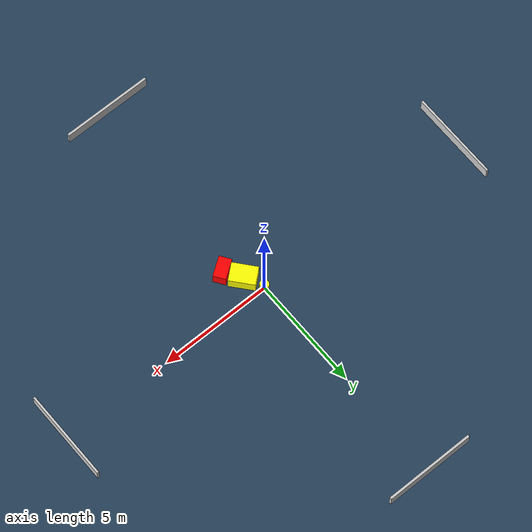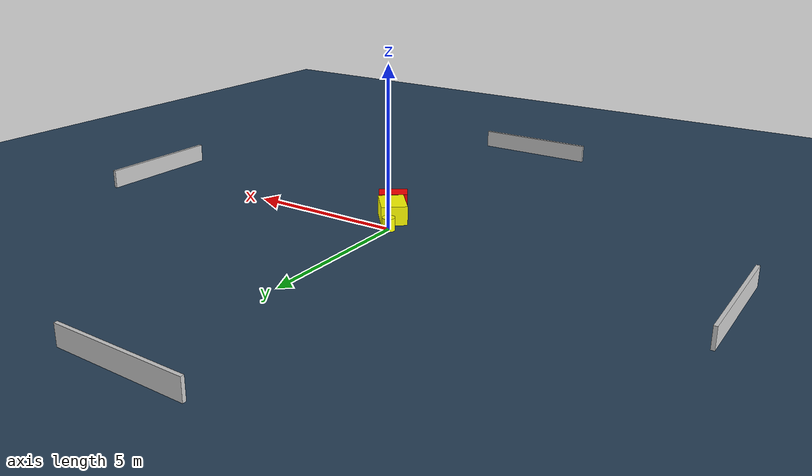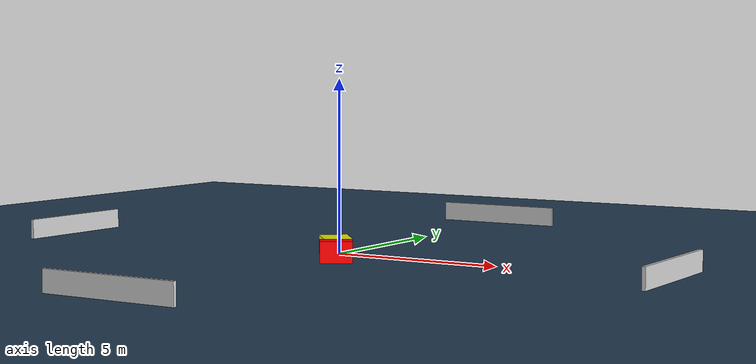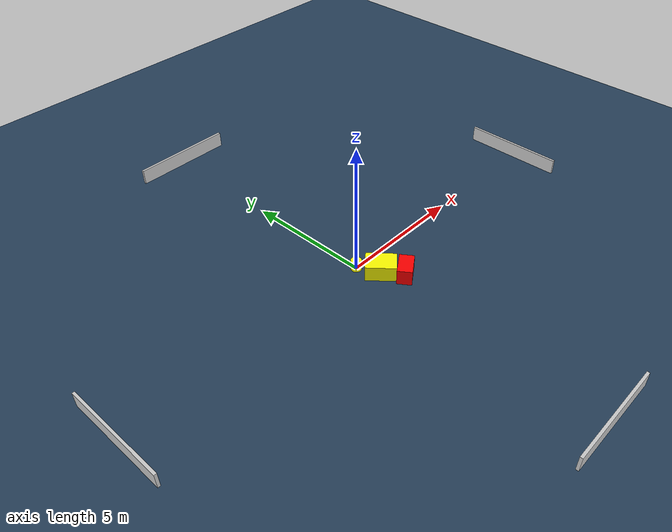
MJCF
<?xml version="1.0" ?>
<mujoco model="generated_environment">
  <option timestep="0.01" integrator="RK4" cone="elliptic"/>
  <default>
    <geom density="1"/>
  </default>
  <asset>
    <texture builtin="gradient" height="3072" name="skybox" rgb1="0.3 0.5 0.7" rgb2="0 0 0" type="skybox" width="512"/>
    <texture builtin="checker" height="300" name="groundplane" rgb1="0.2 0.3 0.4" rgb2="0.1 0.2 0.3" type="2d" width="300"/>
    <material name="groundplane" reflectance="0.2" texrepeat="5 5" texture="groundplane"/>
  </asset>
  <worldbody>
    <light dir="0 0 -1" directional="true" pos="0 0 1.5"/>
    <geom condim="3" friction="0.5 0.005 0.001" material="groundplane" name="floor" pos="0 0 0" size="0 0 0.05" type="plane"/>
    <body name="walls">
      <geom name="wall_1" condim="4" pos="-10.0 0.0 0.3" rgba="0.800000011920929 0.800000011920929 0.800000011920929 1.0" size="0.05 2.0 0.3" type="box"/>
      <geom name="wall_2" condim="4" pos="10.0 0.0 0.3" rgba="0.800000011920929 0.800000011920929 0.800000011920929 1.0" size="0.05 2.0 0.3" type="box"/>
      <geom name="wall_3" condim="4" pos="0.0 -10.0 0.3" rgba="0.800000011920929 0.800000011920929 0.800000011920929 1.0" size="2.0 0.05 0.3" type="box"/>
      <geom name="wall_4" condim="4" pos="0.0 10.0 0.3" rgba="0.800000011920929 0.800000011920929 0.800000011920929 1.0" size="2.0 0.05 0.3" type="box"/>
    </body>
    <body name="robot">
      <joint name="joint_x" type="slide" pos="0 0 0" axis="1 0 0"/>
      <joint name="joint_y" type="slide" pos="0 0 0" axis="0 1 0"/>
      <geom name="robot" type="cylinder" pos="0.0 0.0 0.2" size="0.2 0.2 0.0" mass="5.0" friction="1.0 0.005 0.0001" condim="4" rgba="1.0 1.0 0.0 1.0"/>
    </body>
    <body name="obstacle_1_movable">
      <geom name="obstacle_1_movable" condim="4" pos="0.40650997356882057 -0.8084341004340837 0.3" euler="0 0 130.20784145931347" friction="0.0 0.005 0.001" rgba="1.0 1.0 0.0 1.0" size="0.5620707299476969 0.40330385549550585 0.3" type="box" mass="0.1"/>
      <joint type="free"/>
    </body>
    <body name="obstacle_2_static">
      <geom name="obstacle_2_static" condim="4" pos="0.885071023676972 -1.541084722197531 0.3" euler="0 0 214.41091459515278" friction="0.0 0.005 0.001" rgba="1.0 0.0 0.0 1.0" size="0.452137198023986 0.2745157714360338 0.3" type="box"/>
    </body>
  </worldbody>
  <actuator>
    <motor name="actuator_x" joint="joint_x" gear="1" ctrlrange="-1 1"/>
    <motor name="actuator_y" joint="joint_y" gear="1" ctrlrange="-1 1"/>
  </actuator>
</mujoco>
